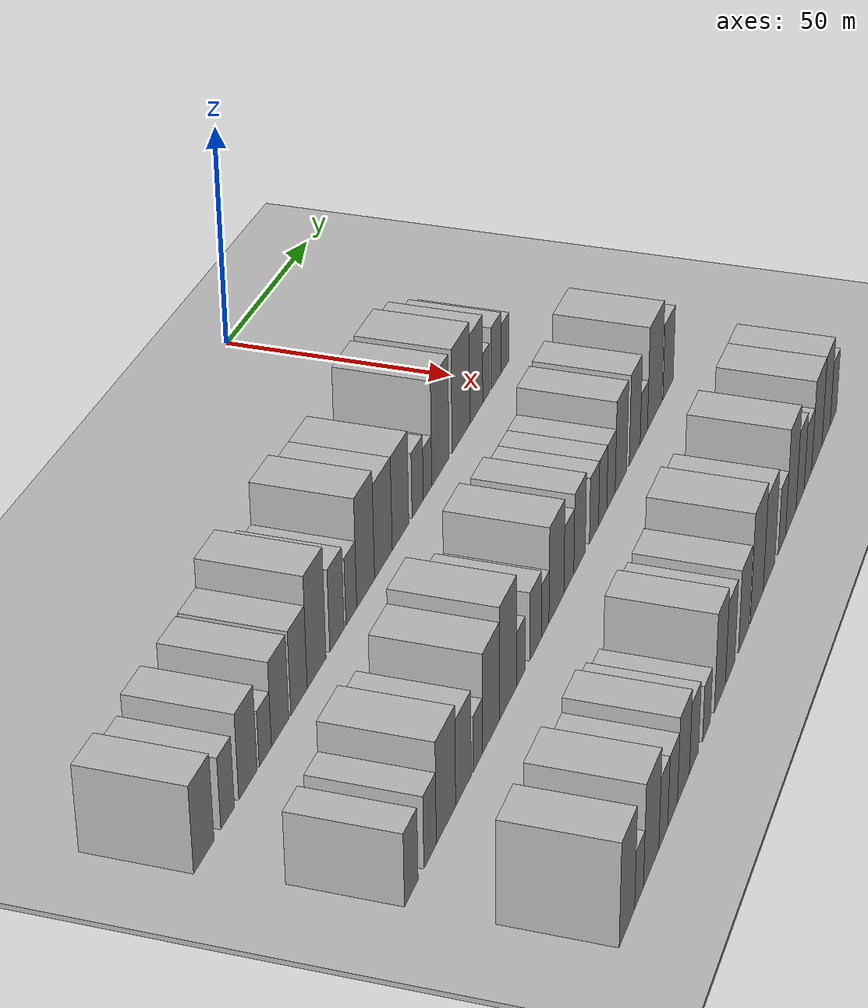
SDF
<sdf version="1.6">
 <world name="default">
  <include><name>ground_plane_1</name><uri>model://HANNAS_ground_plane</uri></include>
  <include>
   <name>ground_plane_2</name>
   <uri>model://HANNAS_ground_plane</uri>
   <pose>100 0 0  0 0 0</pose>
  </include>
  <model name="building_16">
   <static>1</static>
   <pose>50.0000 -164.9744 0 0.000000 0.000000 0.000000</pose>
   <link name="link">
    <pose>0 0 9.00 0 0 0</pose>
    <collision name="collision"><geometry><box><size>20.0000 8.9960 18.0000</size></box></geometry></collision>
    <visual name="visual">
     <cast_shadows>0</cast_shadows>
     <geometry><box><size>20.0000 8.9960 18.0000</size></box></geometry>
     <material>
      <script>
       <uri>model://HANNAS_wall/materials/scripts</uri>
       <uri>model://HANNAS_wall/materials/textures</uri>
       <name>vrc/HANNAS_wall</name>
      </script>
     </material>
    </visual>
   </link>
  </model>
  <model name="building_17">
   <static>1</static>
   <pose>50.0000 -154.3775 0 0.000000 0.000000 0.000000</pose>
   <link name="link">
    <pose>0 0 7.50 0 0 0</pose>
    <collision name="collision"><geometry><box><size>20.0000 6.1977 15.0000</size></box></geometry></collision>
    <visual name="visual">
     <cast_shadows>0</cast_shadows>
     <geometry><box><size>20.0000 6.1977 15.0000</size></box></geometry>
     <material>
      <script>
       <uri>model://HANNAS_wall/materials/scripts</uri>
       <uri>model://HANNAS_wall/materials/textures</uri>
       <name>vrc/HANNAS_wall</name>
      </script>
     </material>
    </visual>
   </link>
  </model>
  <model name="building_18">
   <static>1</static>
   <pose>50.0000 -144.9723 0 0.000000 0.000000 0.000000</pose>
   <link name="link">
    <pose>0 0 9.00 0 0 0</pose>
    <collision name="collision"><geometry><box><size>20.0000 8.6127 18.0000</size></box></geometry></collision>
    <visual name="visual">
     <cast_shadows>0</cast_shadows>
     <geometry><box><size>20.0000 8.6127 18.0000</size></box></geometry>
     <material>
      <script>
       <uri>model://HANNAS_wall/materials/scripts</uri>
       <uri>model://HANNAS_wall/materials/textures</uri>
       <name>vrc/HANNAS_wall</name>
      </script>
     </material>
    </visual>
   </link>
  </model>
  <model name="building_19">
   <static>1</static>
   <pose>50.0000 -136.6993 0 0.000000 0.000000 0.000000</pose>
   <link name="link">
    <pose>0 0 6.00 0 0 0</pose>
    <collision name="collision"><geometry><box><size>20.0000 5.9333 12.0000</size></box></geometry></collision>
    <visual name="visual">
     <cast_shadows>0</cast_shadows>
     <geometry><box><size>20.0000 5.9333 12.0000</size></box></geometry>
     <material>
      <script>
       <uri>model://HANNAS_wall/materials/scripts</uri>
       <uri>model://HANNAS_wall/materials/textures</uri>
       <name>vrc/HANNAS_wall</name>
      </script>
     </material>
    </visual>
   </link>
  </model>
  <model name="building_20">
   <static>1</static>
   <pose>50.0000 -129.4622 0 0.000000 0.000000 0.000000</pose>
   <link name="link">
    <pose>0 0 9.00 0 0 0</pose>
    <collision name="collision"><geometry><box><size>20.0000 8.5408 18.0000</size></box></geometry></collision>
    <visual name="visual">
     <cast_shadows>0</cast_shadows>
     <geometry><box><size>20.0000 8.5408 18.0000</size></box></geometry>
     <material>
      <script>
       <uri>model://HANNAS_wall/materials/scripts</uri>
       <uri>model://HANNAS_wall/materials/textures</uri>
       <name>vrc/HANNAS_wall</name>
      </script>
     </material>
    </visual>
   </link>
  </model>
  <model name="building_21">
   <static>1</static>
   <pose>50.0000 -119.9878 0 0.000000 0.000000 0.000000</pose>
   <link name="link">
    <pose>0 0 9.00 0 0 0</pose>
    <collision name="collision"><geometry><box><size>20.0000 8.4080 18.0000</size></box></geometry></collision>
    <visual name="visual">
     <cast_shadows>0</cast_shadows>
     <geometry><box><size>20.0000 8.4080 18.0000</size></box></geometry>
     <material>
      <script>
       <uri>model://HANNAS_wall/materials/scripts</uri>
       <uri>model://HANNAS_wall/materials/textures</uri>
       <name>vrc/HANNAS_wall</name>
      </script>
     </material>
    </visual>
   </link>
  </model>
  <model name="building_22">
   <static>1</static>
   <pose>50.0000 -110.8837 0 0.000000 0.000000 0.000000</pose>
   <link name="link">
    <pose>0 0 12.00 0 0 0</pose>
    <collision name="collision"><geometry><box><size>20.0000 9.8003 24.0000</size></box></geometry></collision>
    <visual name="visual">
     <cast_shadows>0</cast_shadows>
     <geometry><box><size>20.0000 9.8003 24.0000</size></box></geometry>
     <material>
      <script>
       <uri>model://HANNAS_wall/materials/scripts</uri>
       <uri>model://HANNAS_wall/materials/textures</uri>
       <name>vrc/HANNAS_wall</name>
      </script>
     </material>
    </visual>
   </link>
  </model>
  <model name="building_23">
   <static>1</static>
   <pose>50.0000 -100.1046 0 0.000000 0.000000 0.000000</pose>
   <link name="link">
    <pose>0 0 9.00 0 0 0</pose>
    <collision name="collision"><geometry><box><size>20.0000 7.7578 18.0000</size></box></geometry></collision>
    <visual name="visual">
     <cast_shadows>0</cast_shadows>
     <geometry><box><size>20.0000 7.7578 18.0000</size></box></geometry>
     <material>
      <script>
       <uri>model://HANNAS_wall/materials/scripts</uri>
       <uri>model://HANNAS_wall/materials/textures</uri>
       <name>vrc/HANNAS_wall</name>
      </script>
     </material>
    </visual>
   </link>
  </model>
  <model name="building_24">
   <static>1</static>
   <pose>50.0000 -92.2042 0 0.000000 0.000000 0.000000</pose>
   <link name="link">
    <pose>0 0 7.50 0 0 0</pose>
    <collision name="collision"><geometry><box><size>20.0000 6.0432 15.0000</size></box></geometry></collision>
    <visual name="visual">
     <cast_shadows>0</cast_shadows>
     <geometry><box><size>20.0000 6.0432 15.0000</size></box></geometry>
     <material>
      <script>
       <uri>model://HANNAS_wall/materials/scripts</uri>
       <uri>model://HANNAS_wall/materials/textures</uri>
       <name>vrc/HANNAS_wall</name>
      </script>
     </material>
    </visual>
   </link>
  </model>
  <model name="building_25">
   <static>1</static>
   <pose>50.0000 -84.1262 0 0.000000 0.000000 0.000000</pose>
   <link name="link">
    <pose>0 0 12.00 0 0 0</pose>
    <collision name="collision"><geometry><box><size>20.0000 10.1128 24.0000</size></box></geometry></collision>
    <visual name="visual">
     <cast_shadows>0</cast_shadows>
     <geometry><box><size>20.0000 10.1128 24.0000</size></box></geometry>
     <material>
      <script>
       <uri>model://HANNAS_wall/materials/scripts</uri>
       <uri>model://HANNAS_wall/materials/textures</uri>
       <name>vrc/HANNAS_wall</name>
      </script>
     </material>
    </visual>
   </link>
  </model>
  <model name="building_26">
   <static>1</static>
   <pose>50.0000 -73.8800 0 0.000000 0.000000 0.000000</pose>
   <link name="link">
    <pose>0 0 10.50 0 0 0</pose>
    <collision name="collision"><geometry><box><size>20.0000 10.3797 21.0000</size></box></geometry></collision>
    <visual name="visual">
     <cast_shadows>0</cast_shadows>
     <geometry><box><size>20.0000 10.3797 21.0000</size></box></geometry>
     <material>
      <script>
       <uri>model://HANNAS_wall/materials/scripts</uri>
       <uri>model://HANNAS_wall/materials/textures</uri>
       <name>vrc/HANNAS_wall</name>
      </script>
     </material>
    </visual>
   </link>
  </model>
  <model name="building_27">
   <static>1</static>
   <pose>50.0000 -63.6983 0 0.000000 0.000000 0.000000</pose>
   <link name="link">
    <pose>0 0 10.50 0 0 0</pose>
    <collision name="collision"><geometry><box><size>20.0000 9.9836 21.0000</size></box></geometry></collision>
    <visual name="visual">
     <cast_shadows>0</cast_shadows>
     <geometry><box><size>20.0000 9.9836 21.0000</size></box></geometry>
     <material>
      <script>
       <uri>model://HANNAS_wall/materials/scripts</uri>
       <uri>model://HANNAS_wall/materials/textures</uri>
       <name>vrc/HANNAS_wall</name>
      </script>
     </material>
    </visual>
   </link>
  </model>
  <model name="building_28">
   <static>1</static>
   <pose>50.0000 -53.1800 0 0.000000 0.000000 0.000000</pose>
   <link name="link">
    <pose>0 0 7.50 0 0 0</pose>
    <collision name="collision"><geometry><box><size>20.0000 7.0531 15.0000</size></box></geometry></collision>
    <visual name="visual">
     <cast_shadows>0</cast_shadows>
     <geometry><box><size>20.0000 7.0531 15.0000</size></box></geometry>
     <material>
      <script>
       <uri>model://HANNAS_wall/materials/scripts</uri>
       <uri>model://HANNAS_wall/materials/textures</uri>
       <name>vrc/HANNAS_wall</name>
      </script>
     </material>
    </visual>
   </link>
  </model>
  <model name="building_29">
   <static>1</static>
   <pose>50.0000 -46.9769 0 0.000000 0.000000 0.000000</pose>
   <link name="link">
    <pose>0 0 6.00 0 0 0</pose>
    <collision name="collision"><geometry><box><size>20.0000 5.3529 12.0000</size></box></geometry></collision>
    <visual name="visual">
     <cast_shadows>0</cast_shadows>
     <geometry><box><size>20.0000 5.3529 12.0000</size></box></geometry>
     <material>
      <script>
       <uri>model://HANNAS_wall/materials/scripts</uri>
       <uri>model://HANNAS_wall/materials/textures</uri>
       <name>vrc/HANNAS_wall</name>
      </script>
     </material>
    </visual>
   </link>
  </model>
  <model name="building_30">
   <static>1</static>
   <pose>50.0000 -38.7092 0 0.000000 0.000000 0.000000</pose>
   <link name="link">
    <pose>0 0 12.00 0 0 0</pose>
    <collision name="collision"><geometry><box><size>20.0000 11.1826 24.0000</size></box></geometry></collision>
    <visual name="visual">
     <cast_shadows>0</cast_shadows>
     <geometry><box><size>20.0000 11.1826 24.0000</size></box></geometry>
     <material>
      <script>
       <uri>model://HANNAS_wall/materials/scripts</uri>
       <uri>model://HANNAS_wall/materials/textures</uri>
       <name>vrc/HANNAS_wall</name>
      </script>
     </material>
    </visual>
   </link>
  </model>
  <model name="building_31">
   <static>1</static>
   <pose>50.0000 -25.1452 0 0.000000 0.000000 0.000000</pose>
   <link name="link">
    <pose>0 0 12.00 0 0 0</pose>
    <collision name="collision"><geometry><box><size>20.0000 11.9455 24.0000</size></box></geometry></collision>
    <visual name="visual">
     <cast_shadows>0</cast_shadows>
     <geometry><box><size>20.0000 11.9455 24.0000</size></box></geometry>
     <material>
      <script>
       <uri>model://HANNAS_wall/materials/scripts</uri>
       <uri>model://HANNAS_wall/materials/textures</uri>
       <name>vrc/HANNAS_wall</name>
      </script>
     </material>
    </visual>
   </link>
  </model>
  <model name="building_32">
   <static>1</static>
   <pose>50.0000 -14.6204 0 0.000000 0.000000 0.000000</pose>
   <link name="link">
    <pose>0 0 10.50 0 0 0</pose>
    <collision name="collision"><geometry><box><size>20.0000 9.1040 21.0000</size></box></geometry></collision>
    <visual name="visual">
     <cast_shadows>0</cast_shadows>
     <geometry><box><size>20.0000 9.1040 21.0000</size></box></geometry>
     <material>
      <script>
       <uri>model://HANNAS_wall/materials/scripts</uri>
       <uri>model://HANNAS_wall/materials/textures</uri>
       <name>vrc/HANNAS_wall</name>
      </script>
     </material>
    </visual>
   </link>
  </model>
  <model name="building_33">
   <static>1</static>
   <pose>50.0000 -7.6376 0 0.000000 0.000000 0.000000</pose>
   <link name="link">
    <pose>0 0 6.00 0 0 0</pose>
    <collision name="collision"><geometry><box><size>20.0000 4.8615 12.0000</size></box></geometry></collision>
    <visual name="visual">
     <cast_shadows>0</cast_shadows>
     <geometry><box><size>20.0000 4.8615 12.0000</size></box></geometry>
     <material>
      <script>
       <uri>model://HANNAS_wall/materials/scripts</uri>
       <uri>model://HANNAS_wall/materials/textures</uri>
       <name>vrc/HANNAS_wall</name>
      </script>
     </material>
    </visual>
   </link>
  </model>
  <model name="building_34">
   <static>1</static>
   <pose>50.0000 -0.6195 0 0.000000 0.000000 0.000000</pose>
   <link name="link">
    <pose>0 0 7.50 0 0 0</pose>
    <collision name="collision"><geometry><box><size>20.0000 7.1745 15.0000</size></box></geometry></collision>
    <visual name="visual">
     <cast_shadows>0</cast_shadows>
     <geometry><box><size>20.0000 7.1745 15.0000</size></box></geometry>
     <material>
      <script>
       <uri>model://HANNAS_wall/materials/scripts</uri>
       <uri>model://HANNAS_wall/materials/textures</uri>
       <name>vrc/HANNAS_wall</name>
      </script>
     </material>
    </visual>
   </link>
  </model>
  <model name="building_35">
   <static>1</static>
   <pose>50.0000 5.9453 0 0.000000 0.000000 0.000000</pose>
   <link name="link">
    <pose>0 0 6.00 0 0 0</pose>
    <collision name="collision"><geometry><box><size>20.0000 5.9553 12.0000</size></box></geometry></collision>
    <visual name="visual">
     <cast_shadows>0</cast_shadows>
     <geometry><box><size>20.0000 5.9553 12.0000</size></box></geometry>
     <material>
      <script>
       <uri>model://HANNAS_wall/materials/scripts</uri>
       <uri>model://HANNAS_wall/materials/textures</uri>
       <name>vrc/HANNAS_wall</name>
      </script>
     </material>
    </visual>
   </link>
  </model>
  <model name="building_104">
   <static>1</static>
   <pose>85.0000 -164.1646 0 0.000000 0.000000 0.000000</pose>
   <link name="link">
    <pose>0 0 7.50 0 0 0</pose>
    <collision name="collision"><geometry><box><size>20.0000 6.9411 15.0000</size></box></geometry></collision>
    <visual name="visual">
     <cast_shadows>0</cast_shadows>
     <geometry><box><size>20.0000 6.9411 15.0000</size></box></geometry>
     <material>
      <script>
       <uri>model://HANNAS_wall/materials/scripts</uri>
       <uri>model://HANNAS_wall/materials/textures</uri>
       <name>vrc/HANNAS_wall</name>
      </script>
     </material>
    </visual>
   </link>
  </model>
  <model name="building_105">
   <static>1</static>
   <pose>85.0000 -154.3823 0 0.000000 0.000000 0.000000</pose>
   <link name="link">
    <pose>0 0 7.50 0 0 0</pose>
    <collision name="collision"><geometry><box><size>20.0000 6.6236 15.0000</size></box></geometry></collision>
    <visual name="visual">
     <cast_shadows>0</cast_shadows>
     <geometry><box><size>20.0000 6.6236 15.0000</size></box></geometry>
     <material>
      <script>
       <uri>model://HANNAS_wall/materials/scripts</uri>
       <uri>model://HANNAS_wall/materials/textures</uri>
       <name>vrc/HANNAS_wall</name>
      </script>
     </material>
    </visual>
   </link>
  </model>
  <model name="building_106">
   <static>1</static>
   <pose>85.0000 -145.8281 0 0.000000 0.000000 0.000000</pose>
   <link name="link">
    <pose>0 0 10.50 0 0 0</pose>
    <collision name="collision"><geometry><box><size>20.0000 10.4847 21.0000</size></box></geometry></collision>
    <visual name="visual">
     <cast_shadows>0</cast_shadows>
     <geometry><box><size>20.0000 10.4847 21.0000</size></box></geometry>
     <material>
      <script>
       <uri>model://HANNAS_wall/materials/scripts</uri>
       <uri>model://HANNAS_wall/materials/textures</uri>
       <name>vrc/HANNAS_wall</name>
      </script>
     </material>
    </visual>
   </link>
  </model>
  <model name="building_107">
   <static>1</static>
   <pose>85.0000 -136.1967 0 0.000000 0.000000 0.000000</pose>
   <link name="link">
    <pose>0 0 9.00 0 0 0</pose>
    <collision name="collision"><geometry><box><size>20.0000 8.7781 18.0000</size></box></geometry></collision>
    <visual name="visual">
     <cast_shadows>0</cast_shadows>
     <geometry><box><size>20.0000 8.7781 18.0000</size></box></geometry>
     <material>
      <script>
       <uri>model://HANNAS_wall/materials/scripts</uri>
       <uri>model://HANNAS_wall/materials/textures</uri>
       <name>vrc/HANNAS_wall</name>
      </script>
     </material>
    </visual>
   </link>
  </model>
  <model name="building_108">
   <static>1</static>
   <pose>85.0000 -128.0547 0 0.000000 0.000000 0.000000</pose>
   <link name="link">
    <pose>0 0 6.00 0 0 0</pose>
    <collision name="collision"><geometry><box><size>20.0000 5.5061 12.0000</size></box></geometry></collision>
    <visual name="visual">
     <cast_shadows>0</cast_shadows>
     <geometry><box><size>20.0000 5.5061 12.0000</size></box></geometry>
     <material>
      <script>
       <uri>model://HANNAS_wall/materials/scripts</uri>
       <uri>model://HANNAS_wall/materials/textures</uri>
       <name>vrc/HANNAS_wall</name>
      </script>
     </material>
    </visual>
   </link>
  </model>
  <model name="building_109">
   <static>1</static>
   <pose>85.0000 -120.3358 0 0.000000 0.000000 0.000000</pose>
   <link name="link">
    <pose>0 0 10.50 0 0 0</pose>
    <collision name="collision"><geometry><box><size>20.0000 9.9317 21.0000</size></box></geometry></collision>
    <visual name="visual">
     <cast_shadows>0</cast_shadows>
     <geometry><box><size>20.0000 9.9317 21.0000</size></box></geometry>
     <material>
      <script>
       <uri>model://HANNAS_wall/materials/scripts</uri>
       <uri>model://HANNAS_wall/materials/textures</uri>
       <name>vrc/HANNAS_wall</name>
      </script>
     </material>
    </visual>
   </link>
  </model>
  <model name="building_110">
   <static>1</static>
   <pose>85.0000 -110.1401 0 0.000000 0.000000 0.000000</pose>
   <link name="link">
    <pose>0 0 12.00 0 0 0</pose>
    <collision name="collision"><geometry><box><size>20.0000 10.4596 24.0000</size></box></geometry></collision>
    <visual name="visual">
     <cast_shadows>0</cast_shadows>
     <geometry><box><size>20.0000 10.4596 24.0000</size></box></geometry>
     <material>
      <script>
       <uri>model://HANNAS_wall/materials/scripts</uri>
       <uri>model://HANNAS_wall/materials/textures</uri>
       <name>vrc/HANNAS_wall</name>
      </script>
     </material>
    </visual>
   </link>
  </model>
  <model name="building_111">
   <static>1</static>
   <pose>85.0000 -102.1613 0 0.000000 0.000000 0.000000</pose>
   <link name="link">
    <pose>0 0 6.00 0 0 0</pose>
    <collision name="collision"><geometry><box><size>20.0000 5.4979 12.0000</size></box></geometry></collision>
    <visual name="visual">
     <cast_shadows>0</cast_shadows>
     <geometry><box><size>20.0000 5.4979 12.0000</size></box></geometry>
     <material>
      <script>
       <uri>model://HANNAS_wall/materials/scripts</uri>
       <uri>model://HANNAS_wall/materials/textures</uri>
       <name>vrc/HANNAS_wall</name>
      </script>
     </material>
    </visual>
   </link>
  </model>
  <model name="building_112">
   <static>1</static>
   <pose>85.0000 -92.6820 0 0.000000 0.000000 0.000000</pose>
   <link name="link">
    <pose>0 0 7.50 0 0 0</pose>
    <collision name="collision"><geometry><box><size>20.0000 7.4607 15.0000</size></box></geometry></collision>
    <visual name="visual">
     <cast_shadows>0</cast_shadows>
     <geometry><box><size>20.0000 7.4607 15.0000</size></box></geometry>
     <material>
      <script>
       <uri>model://HANNAS_wall/materials/scripts</uri>
       <uri>model://HANNAS_wall/materials/textures</uri>
       <name>vrc/HANNAS_wall</name>
      </script>
     </material>
    </visual>
   </link>
  </model>
  <model name="building_113">
   <static>1</static>
   <pose>85.0000 -86.4443 0 0.000000 0.000000 0.000000</pose>
   <link name="link">
    <pose>0 0 6.00 0 0 0</pose>
    <collision name="collision"><geometry><box><size>20.0000 5.0147 12.0000</size></box></geometry></collision>
    <visual name="visual">
     <cast_shadows>0</cast_shadows>
     <geometry><box><size>20.0000 5.0147 12.0000</size></box></geometry>
     <material>
      <script>
       <uri>model://HANNAS_wall/materials/scripts</uri>
       <uri>model://HANNAS_wall/materials/textures</uri>
       <name>vrc/HANNAS_wall</name>
      </script>
     </material>
    </visual>
   </link>
  </model>
  <model name="building_114">
   <static>1</static>
   <pose>85.0000 -78.8942 0 0.000000 0.000000 0.000000</pose>
   <link name="link">
    <pose>0 0 10.50 0 0 0</pose>
    <collision name="collision"><geometry><box><size>20.0000 10.0856 21.0000</size></box></geometry></collision>
    <visual name="visual">
     <cast_shadows>0</cast_shadows>
     <geometry><box><size>20.0000 10.0856 21.0000</size></box></geometry>
     <material>
      <script>
       <uri>model://HANNAS_wall/materials/scripts</uri>
       <uri>model://HANNAS_wall/materials/textures</uri>
       <name>vrc/HANNAS_wall</name>
      </script>
     </material>
    </visual>
   </link>
  </model>
  <model name="building_115">
   <static>1</static>
   <pose>85.0000 -70.4121 0 0.000000 0.000000 0.000000</pose>
   <link name="link">
    <pose>0 0 7.50 0 0 0</pose>
    <collision name="collision"><geometry><box><size>20.0000 6.8786 15.0000</size></box></geometry></collision>
    <visual name="visual">
     <cast_shadows>0</cast_shadows>
     <geometry><box><size>20.0000 6.8786 15.0000</size></box></geometry>
     <material>
      <script>
       <uri>model://HANNAS_wall/materials/scripts</uri>
       <uri>model://HANNAS_wall/materials/textures</uri>
       <name>vrc/HANNAS_wall</name>
      </script>
     </material>
    </visual>
   </link>
  </model>
  <model name="building_116">
   <static>1</static>
   <pose>85.0000 -62.9110 0 0.000000 0.000000 0.000000</pose>
   <link name="link">
    <pose>0 0 9.00 0 0 0</pose>
    <collision name="collision"><geometry><box><size>20.0000 8.1236 18.0000</size></box></geometry></collision>
    <visual name="visual">
     <cast_shadows>0</cast_shadows>
     <geometry><box><size>20.0000 8.1236 18.0000</size></box></geometry>
     <material>
      <script>
       <uri>model://HANNAS_wall/materials/scripts</uri>
       <uri>model://HANNAS_wall/materials/textures</uri>
       <name>vrc/HANNAS_wall</name>
      </script>
     </material>
    </visual>
   </link>
  </model>
  <model name="building_117">
   <static>1</static>
   <pose>85.0000 -52.5170 0 0.000000 0.000000 0.000000</pose>
   <link name="link">
    <pose>0 0 7.50 0 0 0</pose>
    <collision name="collision"><geometry><box><size>20.0000 6.6643 15.0000</size></box></geometry></collision>
    <visual name="visual">
     <cast_shadows>0</cast_shadows>
     <geometry><box><size>20.0000 6.6643 15.0000</size></box></geometry>
     <material>
      <script>
       <uri>model://HANNAS_wall/materials/scripts</uri>
       <uri>model://HANNAS_wall/materials/textures</uri>
       <name>vrc/HANNAS_wall</name>
      </script>
     </material>
    </visual>
   </link>
  </model>
  <model name="building_118">
   <static>1</static>
   <pose>85.0000 -46.1181 0 0.000000 0.000000 0.000000</pose>
   <link name="link">
    <pose>0 0 7.50 0 0 0</pose>
    <collision name="collision"><geometry><box><size>20.0000 6.1335 15.0000</size></box></geometry></collision>
    <visual name="visual">
     <cast_shadows>0</cast_shadows>
     <geometry><box><size>20.0000 6.1335 15.0000</size></box></geometry>
     <material>
      <script>
       <uri>model://HANNAS_wall/materials/scripts</uri>
       <uri>model://HANNAS_wall/materials/textures</uri>
       <name>vrc/HANNAS_wall</name>
      </script>
     </material>
    </visual>
   </link>
  </model>
  <model name="building_119">
   <static>1</static>
   <pose>85.0000 -39.9002 0 0.000000 0.000000 0.000000</pose>
   <link name="link">
    <pose>0 0 7.50 0 0 0</pose>
    <collision name="collision"><geometry><box><size>20.0000 6.3023 15.0000</size></box></geometry></collision>
    <visual name="visual">
     <cast_shadows>0</cast_shadows>
     <geometry><box><size>20.0000 6.3023 15.0000</size></box></geometry>
     <material>
      <script>
       <uri>model://HANNAS_wall/materials/scripts</uri>
       <uri>model://HANNAS_wall/materials/textures</uri>
       <name>vrc/HANNAS_wall</name>
      </script>
     </material>
    </visual>
   </link>
  </model>
  <model name="building_120">
   <static>1</static>
   <pose>85.0000 -32.2809 0 0.000000 0.000000 0.000000</pose>
   <link name="link">
    <pose>0 0 10.50 0 0 0</pose>
    <collision name="collision"><geometry><box><size>20.0000 8.9364 21.0000</size></box></geometry></collision>
    <visual name="visual">
     <cast_shadows>0</cast_shadows>
     <geometry><box><size>20.0000 8.9364 21.0000</size></box></geometry>
     <material>
      <script>
       <uri>model://HANNAS_wall/materials/scripts</uri>
       <uri>model://HANNAS_wall/materials/textures</uri>
       <name>vrc/HANNAS_wall</name>
      </script>
     </material>
    </visual>
   </link>
  </model>
  <model name="building_121">
   <static>1</static>
   <pose>85.0000 -21.4234 0 0.000000 0.000000 0.000000</pose>
   <link name="link">
    <pose>0 0 10.50 0 0 0</pose>
    <collision name="collision"><geometry><box><size>20.0000 8.7787 21.0000</size></box></geometry></collision>
    <visual name="visual">
     <cast_shadows>0</cast_shadows>
     <geometry><box><size>20.0000 8.7787 21.0000</size></box></geometry>
     <material>
      <script>
       <uri>model://HANNAS_wall/materials/scripts</uri>
       <uri>model://HANNAS_wall/materials/textures</uri>
       <name>vrc/HANNAS_wall</name>
      </script>
     </material>
    </visual>
   </link>
  </model>
  <model name="building_122">
   <static>1</static>
   <pose>85.0000 -14.0853 0 0.000000 0.000000 0.000000</pose>
   <link name="link">
    <pose>0 0 6.00 0 0 0</pose>
    <collision name="collision"><geometry><box><size>20.0000 5.8975 12.0000</size></box></geometry></collision>
    <visual name="visual">
     <cast_shadows>0</cast_shadows>
     <geometry><box><size>20.0000 5.8975 12.0000</size></box></geometry>
     <material>
      <script>
       <uri>model://HANNAS_wall/materials/scripts</uri>
       <uri>model://HANNAS_wall/materials/textures</uri>
       <name>vrc/HANNAS_wall</name>
      </script>
     </material>
    </visual>
   </link>
  </model>
  <model name="building_123">
   <static>1</static>
   <pose>85.0000 -5.1729 0 0.000000 0.000000 0.000000</pose>
   <link name="link">
    <pose>0 0 12.00 0 0 0</pose>
    <collision name="collision"><geometry><box><size>20.0000 11.9271 24.0000</size></box></geometry></collision>
    <visual name="visual">
     <cast_shadows>0</cast_shadows>
     <geometry><box><size>20.0000 11.9271 24.0000</size></box></geometry>
     <material>
      <script>
       <uri>model://HANNAS_wall/materials/scripts</uri>
       <uri>model://HANNAS_wall/materials/textures</uri>
       <name>vrc/HANNAS_wall</name>
      </script>
     </material>
    </visual>
   </link>
  </model>
  <model name="building_124">
   <static>1</static>
   <pose>85.0000 6.2131 0 0.000000 0.000000 0.000000</pose>
   <link name="link">
    <pose>0 0 9.00 0 0 0</pose>
    <collision name="collision"><geometry><box><size>20.0000 8.8450 18.0000</size></box></geometry></collision>
    <visual name="visual">
     <cast_shadows>0</cast_shadows>
     <geometry><box><size>20.0000 8.8450 18.0000</size></box></geometry>
     <material>
      <script>
       <uri>model://HANNAS_wall/materials/scripts</uri>
       <uri>model://HANNAS_wall/materials/textures</uri>
       <name>vrc/HANNAS_wall</name>
      </script>
     </material>
    </visual>
   </link>
  </model>
  <model name="building_186">
   <static>1</static>
   <pose>120.0000 -162.7374 0 0.000000 0.000000 0.000000</pose>
   <link name="link">
    <pose>0 0 10.50 0 0 0</pose>
    <collision name="collision"><geometry><box><size>20.0000 9.5880 21.0000</size></box></geometry></collision>
    <visual name="visual">
     <cast_shadows>0</cast_shadows>
     <geometry><box><size>20.0000 9.5880 21.0000</size></box></geometry>
     <material>
      <script>
       <uri>model://HANNAS_wall/materials/scripts</uri>
       <uri>model://HANNAS_wall/materials/textures</uri>
       <name>vrc/HANNAS_wall</name>
      </script>
     </material>
    </visual>
   </link>
  </model>
  <model name="building_187">
   <static>1</static>
   <pose>120.0000 -155.1000 0 0.000000 0.000000 0.000000</pose>
   <link name="link">
    <pose>0 0 6.00 0 0 0</pose>
    <collision name="collision"><geometry><box><size>20.0000 5.6866 12.0000</size></box></geometry></collision>
    <visual name="visual">
     <cast_shadows>0</cast_shadows>
     <geometry><box><size>20.0000 5.6866 12.0000</size></box></geometry>
     <material>
      <script>
       <uri>model://HANNAS_wall/materials/scripts</uri>
       <uri>model://HANNAS_wall/materials/textures</uri>
       <name>vrc/HANNAS_wall</name>
      </script>
     </material>
    </visual>
   </link>
  </model>
  <model name="building_188">
   <static>1</static>
   <pose>120.0000 -147.1972 0 0.000000 0.000000 0.000000</pose>
   <link name="link">
    <pose>0 0 10.50 0 0 0</pose>
    <collision name="collision"><geometry><box><size>20.0000 10.1190 21.0000</size></box></geometry></collision>
    <visual name="visual">
     <cast_shadows>0</cast_shadows>
     <geometry><box><size>20.0000 10.1190 21.0000</size></box></geometry>
     <material>
      <script>
       <uri>model://HANNAS_wall/materials/scripts</uri>
       <uri>model://HANNAS_wall/materials/textures</uri>
       <name>vrc/HANNAS_wall</name>
      </script>
     </material>
    </visual>
   </link>
  </model>
  <model name="building_189">
   <static>1</static>
   <pose>120.0000 -139.1010 0 0.000000 0.000000 0.000000</pose>
   <link name="link">
    <pose>0 0 7.50 0 0 0</pose>
    <collision name="collision"><geometry><box><size>20.0000 6.0734 15.0000</size></box></geometry></collision>
    <visual name="visual">
     <cast_shadows>0</cast_shadows>
     <geometry><box><size>20.0000 6.0734 15.0000</size></box></geometry>
     <material>
      <script>
       <uri>model://HANNAS_wall/materials/scripts</uri>
       <uri>model://HANNAS_wall/materials/textures</uri>
       <name>vrc/HANNAS_wall</name>
      </script>
     </material>
    </visual>
   </link>
  </model>
  <model name="building_190">
   <static>1</static>
   <pose>120.0000 -132.7340 0 0.000000 0.000000 0.000000</pose>
   <link name="link">
    <pose>0 0 7.50 0 0 0</pose>
    <collision name="collision"><geometry><box><size>20.0000 6.6605 15.0000</size></box></geometry></collision>
    <visual name="visual">
     <cast_shadows>0</cast_shadows>
     <geometry><box><size>20.0000 6.6605 15.0000</size></box></geometry>
     <material>
      <script>
       <uri>model://HANNAS_wall/materials/scripts</uri>
       <uri>model://HANNAS_wall/materials/textures</uri>
       <name>vrc/HANNAS_wall</name>
      </script>
     </material>
    </visual>
   </link>
  </model>
  <model name="building_191">
   <static>1</static>
   <pose>120.0000 -125.1701 0 0.000000 0.000000 0.000000</pose>
   <link name="link">
    <pose>0 0 9.00 0 0 0</pose>
    <collision name="collision"><geometry><box><size>20.0000 8.4672 18.0000</size></box></geometry></collision>
    <visual name="visual">
     <cast_shadows>0</cast_shadows>
     <geometry><box><size>20.0000 8.4672 18.0000</size></box></geometry>
     <material>
      <script>
       <uri>model://HANNAS_wall/materials/scripts</uri>
       <uri>model://HANNAS_wall/materials/textures</uri>
       <name>vrc/HANNAS_wall</name>
      </script>
     </material>
    </visual>
   </link>
  </model>
  <model name="building_192">
   <static>1</static>
   <pose>120.0000 -117.5970 0 0.000000 0.000000 0.000000</pose>
   <link name="link">
    <pose>0 0 7.50 0 0 0</pose>
    <collision name="collision"><geometry><box><size>20.0000 6.6792 15.0000</size></box></geometry></collision>
    <visual name="visual">
     <cast_shadows>0</cast_shadows>
     <geometry><box><size>20.0000 6.6792 15.0000</size></box></geometry>
     <material>
      <script>
       <uri>model://HANNAS_wall/materials/scripts</uri>
       <uri>model://HANNAS_wall/materials/textures</uri>
       <name>vrc/HANNAS_wall</name>
      </script>
     </material>
    </visual>
   </link>
  </model>
  <model name="building_193">
   <static>1</static>
   <pose>120.0000 -108.3423 0 0.000000 0.000000 0.000000</pose>
   <link name="link">
    <pose>0 0 6.00 0 0 0</pose>
    <collision name="collision"><geometry><box><size>20.0000 5.8302 12.0000</size></box></geometry></collision>
    <visual name="visual">
     <cast_shadows>0</cast_shadows>
     <geometry><box><size>20.0000 5.8302 12.0000</size></box></geometry>
     <material>
      <script>
       <uri>model://HANNAS_wall/materials/scripts</uri>
       <uri>model://HANNAS_wall/materials/textures</uri>
       <name>vrc/HANNAS_wall</name>
      </script>
     </material>
    </visual>
   </link>
  </model>
  <model name="building_194">
   <static>1</static>
   <pose>120.0000 -98.1176 0 0.000000 0.000000 0.000000</pose>
   <link name="link">
    <pose>0 0 10.50 0 0 0</pose>
    <collision name="collision"><geometry><box><size>20.0000 8.6191 21.0000</size></box></geometry></collision>
    <visual name="visual">
     <cast_shadows>0</cast_shadows>
     <geometry><box><size>20.0000 8.6191 21.0000</size></box></geometry>
     <material>
      <script>
       <uri>model://HANNAS_wall/materials/scripts</uri>
       <uri>model://HANNAS_wall/materials/textures</uri>
       <name>vrc/HANNAS_wall</name>
      </script>
     </material>
    </visual>
   </link>
  </model>
  <model name="building_195">
   <static>1</static>
   <pose>120.0000 -90.0930 0 0.000000 0.000000 0.000000</pose>
   <link name="link">
    <pose>0 0 9.00 0 0 0</pose>
    <collision name="collision"><geometry><box><size>20.0000 7.4302 18.0000</size></box></geometry></collision>
    <visual name="visual">
     <cast_shadows>0</cast_shadows>
     <geometry><box><size>20.0000 7.4302 18.0000</size></box></geometry>
     <material>
      <script>
       <uri>model://HANNAS_wall/materials/scripts</uri>
       <uri>model://HANNAS_wall/materials/textures</uri>
       <name>vrc/HANNAS_wall</name>
      </script>
     </material>
    </visual>
   </link>
  </model>
  <model name="building_196">
   <static>1</static>
   <pose>120.0000 -79.0216 0 0.000000 0.000000 0.000000</pose>
   <link name="link">
    <pose>0 0 9.00 0 0 0</pose>
    <collision name="collision"><geometry><box><size>20.0000 8.7126 18.0000</size></box></geometry></collision>
    <visual name="visual">
     <cast_shadows>0</cast_shadows>
     <geometry><box><size>20.0000 8.7126 18.0000</size></box></geometry>
     <material>
      <script>
       <uri>model://HANNAS_wall/materials/scripts</uri>
       <uri>model://HANNAS_wall/materials/textures</uri>
       <name>vrc/HANNAS_wall</name>
      </script>
     </material>
    </visual>
   </link>
  </model>
  <model name="building_197">
   <static>1</static>
   <pose>120.0000 -68.1028 0 0.000000 0.000000 0.000000</pose>
   <link name="link">
    <pose>0 0 12.00 0 0 0</pose>
    <collision name="collision"><geometry><box><size>20.0000 11.1250 24.0000</size></box></geometry></collision>
    <visual name="visual">
     <cast_shadows>0</cast_shadows>
     <geometry><box><size>20.0000 11.1250 24.0000</size></box></geometry>
     <material>
      <script>
       <uri>model://HANNAS_wall/materials/scripts</uri>
       <uri>model://HANNAS_wall/materials/textures</uri>
       <name>vrc/HANNAS_wall</name>
      </script>
     </material>
    </visual>
   </link>
  </model>
  <model name="building_198">
   <static>1</static>
   <pose>120.0000 -57.4683 0 0.000000 0.000000 0.000000</pose>
   <link name="link">
    <pose>0 0 10.50 0 0 0</pose>
    <collision name="collision"><geometry><box><size>20.0000 10.1440 21.0000</size></box></geometry></collision>
    <visual name="visual">
     <cast_shadows>0</cast_shadows>
     <geometry><box><size>20.0000 10.1440 21.0000</size></box></geometry>
     <material>
      <script>
       <uri>model://HANNAS_wall/materials/scripts</uri>
       <uri>model://HANNAS_wall/materials/textures</uri>
       <name>vrc/HANNAS_wall</name>
      </script>
     </material>
    </visual>
   </link>
  </model>
  <model name="building_199">
   <static>1</static>
   <pose>120.0000 -46.0438 0 0.000000 0.000000 0.000000</pose>
   <link name="link">
    <pose>0 0 7.50 0 0 0</pose>
    <collision name="collision"><geometry><box><size>20.0000 6.7051 15.0000</size></box></geometry></collision>
    <visual name="visual">
     <cast_shadows>0</cast_shadows>
     <geometry><box><size>20.0000 6.7051 15.0000</size></box></geometry>
     <material>
      <script>
       <uri>model://HANNAS_wall/materials/scripts</uri>
       <uri>model://HANNAS_wall/materials/textures</uri>
       <name>vrc/HANNAS_wall</name>
      </script>
     </material>
    </visual>
   </link>
  </model>
  <model name="building_200">
   <static>1</static>
   <pose>120.0000 -37.8166 0 0.000000 0.000000 0.000000</pose>
   <link name="link">
    <pose>0 0 12.00 0 0 0</pose>
    <collision name="collision"><geometry><box><size>20.0000 9.7494 24.0000</size></box></geometry></collision>
    <visual name="visual">
     <cast_shadows>0</cast_shadows>
     <geometry><box><size>20.0000 9.7494 24.0000</size></box></geometry>
     <material>
      <script>
       <uri>model://HANNAS_wall/materials/scripts</uri>
       <uri>model://HANNAS_wall/materials/textures</uri>
       <name>vrc/HANNAS_wall</name>
      </script>
     </material>
    </visual>
   </link>
  </model>
  <model name="building_201">
   <static>1</static>
   <pose>120.0000 -29.0373 0 0.000000 0.000000 0.000000</pose>
   <link name="link">
    <pose>0 0 9.00 0 0 0</pose>
    <collision name="collision"><geometry><box><size>20.0000 7.8092 18.0000</size></box></geometry></collision>
    <visual name="visual">
     <cast_shadows>0</cast_shadows>
     <geometry><box><size>20.0000 7.8092 18.0000</size></box></geometry>
     <material>
      <script>
       <uri>model://HANNAS_wall/materials/scripts</uri>
       <uri>model://HANNAS_wall/materials/textures</uri>
       <name>vrc/HANNAS_wall</name>
      </script>
     </material>
    </visual>
   </link>
  </model>
  <model name="building_202">
   <static>1</static>
   <pose>120.0000 -21.5264 0 0.000000 0.000000 0.000000</pose>
   <link name="link">
    <pose>0 0 7.50 0 0 0</pose>
    <collision name="collision"><geometry><box><size>20.0000 7.2127 15.0000</size></box></geometry></collision>
    <visual name="visual">
     <cast_shadows>0</cast_shadows>
     <geometry><box><size>20.0000 7.2127 15.0000</size></box></geometry>
     <material>
      <script>
       <uri>model://HANNAS_wall/materials/scripts</uri>
       <uri>model://HANNAS_wall/materials/textures</uri>
       <name>vrc/HANNAS_wall</name>
      </script>
     </material>
    </visual>
   </link>
  </model>
  <model name="building_203">
   <static>1</static>
   <pose>120.0000 -12.7467 0 0.000000 0.000000 0.000000</pose>
   <link name="link">
    <pose>0 0 10.50 0 0 0</pose>
    <collision name="collision"><geometry><box><size>20.0000 10.3467 21.0000</size></box></geometry></collision>
    <visual name="visual">
     <cast_shadows>0</cast_shadows>
     <geometry><box><size>20.0000 10.3467 21.0000</size></box></geometry>
     <material>
      <script>
       <uri>model://HANNAS_wall/materials/scripts</uri>
       <uri>model://HANNAS_wall/materials/textures</uri>
       <name>vrc/HANNAS_wall</name>
      </script>
     </material>
    </visual>
   </link>
  </model>
  <model name="building_204">
   <static>1</static>
   <pose>120.0000 -3.3206 0 0.000000 0.000000 0.000000</pose>
   <link name="link">
    <pose>0 0 10.50 0 0 0</pose>
    <collision name="collision"><geometry><box><size>20.0000 8.5056 21.0000</size></box></geometry></collision>
    <visual name="visual">
     <cast_shadows>0</cast_shadows>
     <geometry><box><size>20.0000 8.5056 21.0000</size></box></geometry>
     <material>
      <script>
       <uri>model://HANNAS_wall/materials/scripts</uri>
       <uri>model://HANNAS_wall/materials/textures</uri>
       <name>vrc/HANNAS_wall</name>
      </script>
     </material>
    </visual>
   </link>
  </model>
  <model name="building_205">
   <static>1</static>
   <pose>120.0000 4.2830 0 0.000000 0.000000 0.000000</pose>
   <link name="link">
    <pose>0 0 7.50 0 0 0</pose>
    <collision name="collision"><geometry><box><size>20.0000 6.7015 15.0000</size></box></geometry></collision>
    <visual name="visual">
     <cast_shadows>0</cast_shadows>
     <geometry><box><size>20.0000 6.7015 15.0000</size></box></geometry>
     <material>
      <script>
       <uri>model://HANNAS_wall/materials/scripts</uri>
       <uri>model://HANNAS_wall/materials/textures</uri>
       <name>vrc/HANNAS_wall</name>
      </script>
     </material>
    </visual>
   </link>
  </model>
 </world>
</sdf>
